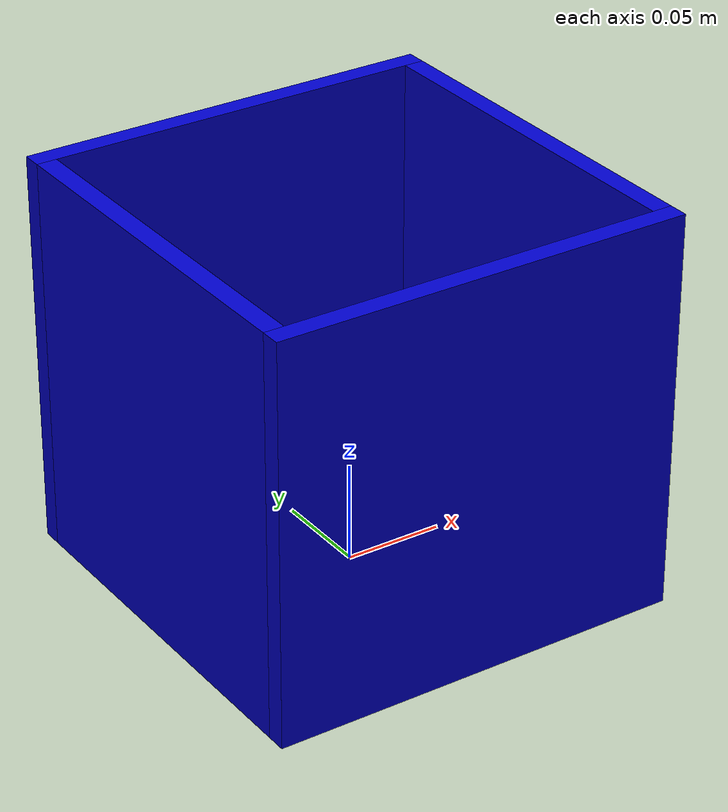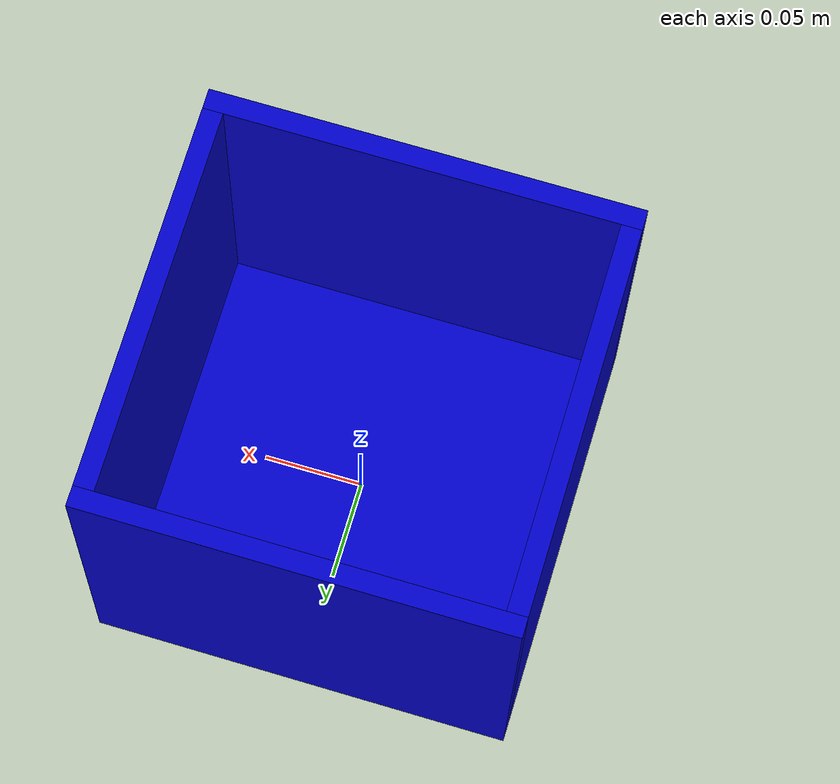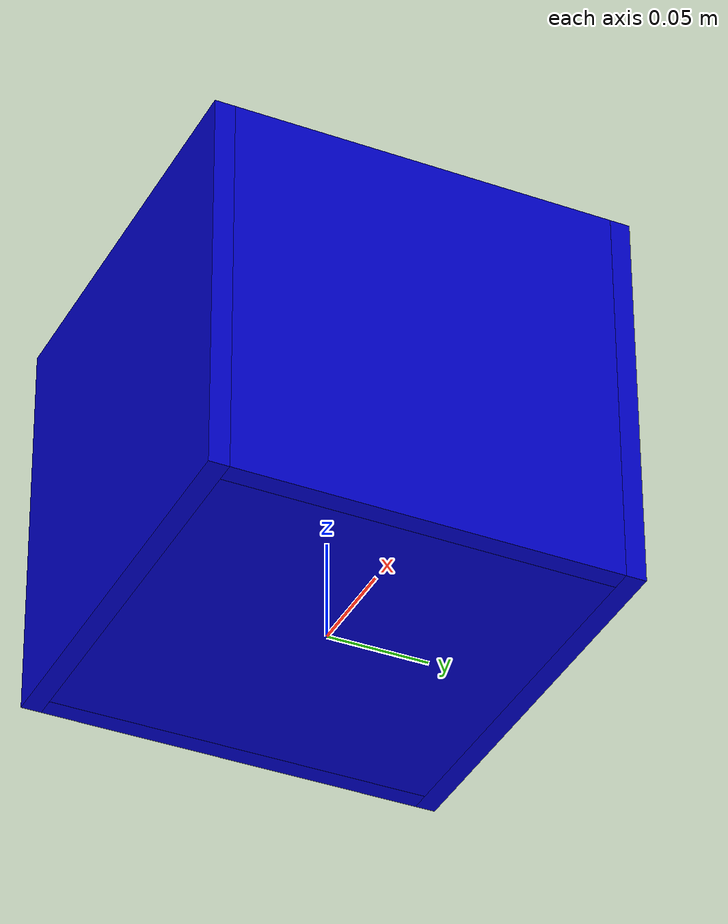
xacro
<?xml version="1.0" encoding="UTF-8"?>
<robot xmlns:xacro="http://ros.org/wiki/xacro" name="box">

  <!-- This creates an open box, i.e. 5-sided box with open side facing up. -->

  <xacro:arg name="create_box" default="true"/>
  <xacro:arg name="x_extent"   default="0.2"/>
  <xacro:arg name="y_extent"   default="0.2"/>
  <xacro:arg name="z_extent"   default="0.2"/>

  <xacro:include filename="$(find ll4ma_robots_description)/urdf/xacro_macros/inertia_tensors.xacro"/>

  <xacro:macro name="wall" params="link_name x_extent y_extent z_extent mass">
    <link name="${link_name}">
      <inertial>
	<origin xyz="0 0 0" rpy="0 0 0"/>
        <mass value="${mass}"/>
	<xacro:cuboid_inertia m="${mass}" x="${x_extent}" y="${y_extent}" z="${z_extent}"/>
      </inertial>
      <visual>
        <origin xyz="0 0 0" rpy="0 0 0"/>
        <geometry>
    	  <box size="${x_extent} ${y_extent} ${z_extent}" />
        </geometry>
        <material name="blue">
	  <color rgba="0 0 0.8 1"/>
	</material>
      </visual>
      <collision>
        <origin xyz="0 0 0" rpy="0 0 0"/>
        <geometry>
	  <box size="${x_extent} ${y_extent} ${z_extent}" />
        </geometry>
      </collision>
    </link>
  </xacro:macro>

  <xacro:macro name="open_box" params="x_extent:=1 y_extent:=1 z_extent:=1">
    <xacro:property name="link_mass" value="1"/>
    <xacro:property name="wall_thickness" value="0.01"/>

    <xacro:wall link_name="box_base" x_extent="${x_extent-wall_thickness}"
		y_extent="${y_extent-wall_thickness}" z_extent="${wall_thickness}"
		mass="${link_mass}"/>

    <xacro:wall link_name="box_left_wall" x_extent="${x_extent+wall_thickness}"
		y_extent="${wall_thickness}" z_extent="${z_extent}" mass="${link_mass}"/>
    <joint name="base_to_left_wall" type="fixed">
      <origin xyz="0 ${-y_extent/2} ${(z_extent-wall_thickness)/2}" rpy="0 0 0"/>
      <parent link="box_base"/>
      <child link="box_left_wall"/>
    </joint>

    <xacro:wall link_name="box_right_wall" x_extent="${x_extent+wall_thickness}"
		y_extent="${wall_thickness}" z_extent="${z_extent}" mass="${link_mass}"/>
    <joint name="base_to_right_wall" type="fixed">
      <origin xyz="0 ${y_extent/2} ${(z_extent-wall_thickness)/2}" rpy="0 0 0"/>
      <parent link="box_base"/>
      <child link="box_right_wall"/>
    </joint>

    <xacro:wall link_name="box_back_wall" x_extent="${wall_thickness}"
		y_extent="${y_extent-wall_thickness}" z_extent="${z_extent}" mass="${link_mass}"/>
    <joint name="base_to_back_wall" type="fixed">
      <origin xyz="${-x_extent/2} 0 ${(z_extent-wall_thickness)/2}" rpy="0 0 0"/>
      <parent link="box_base"/>
      <child link="box_back_wall"/>
    </joint>

    <xacro:wall link_name="box_front_wall" x_extent="${wall_thickness}"
		y_extent="${y_extent-wall_thickness}" z_extent="${z_extent}" mass="${link_mass}"/>
    <joint name="base_to_front_wall" type="fixed">
      <origin xyz="${x_extent/2} 0 ${(z_extent-wall_thickness)/2}" rpy="0 0 0"/>
      <parent link="box_base"/>
      <child link="box_front_wall"/>
    </joint>

  </xacro:macro>

  <xacro:if value="$(arg create_box)">
    <xacro:open_box x_extent="$(arg x_extent)" y_extent="$(arg y_extent)" z_extent="$(arg z_extent)"/>
  </xacro:if>

</robot>

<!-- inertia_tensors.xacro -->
<robot xmlns:xacro="http://www.ros.org/wiki/xacro">

  <!-- x = depth, y = width, z = height -->
  <xacro:macro name="cuboid_inertia" params="m x y z">
    <inertia ixx="${(1.0 / 12.0) * m * (y * y + z * z)}" ixy="0.0" ixz="0.0"
	     iyy="${(1.0 / 12.0) * m * (x * x + z * z)}" iyz="0.0"
	     izz="${(1.0 / 12.0) * m * (x * x + y * y)}"/>
  </xacro:macro>

  <xacro:macro name="ellipsoid_inertia" params="m x y z">
    <inertia ixx="${(1.0 / 5.0) * m * (y * y + z * z)}" ixy="0.0" ixz="0.0"
	     iyy="${(1.0 / 5.0) * m * (x * x + z * z)}" iyz="0.0"
	     izz="${(1.0 / 5.0) * m * (x * x + y * y)}"/>
  </xacro:macro>

  <xacro:macro name="sphere_inertia" params="m r">
    <inertia ixx="${(2.0 / 5.0) * m * (r * r)}" ixy="0.0" ixz="0.0"
	     iyy="${(2.0 / 5.0) * m * (r * r)}" iyz="0.0"
	     izz="${(2.0 / 5.0) * m * (r * r)}"/>
  </xacro:macro>

  <!-- Assuming z-axis goes along height of cylinder -->
  <xacro:macro name="cylinder_inertia" params="m r h">
    <inertia ixx="${(1.0 / 12.0) * m * (3 * r * r + h * h)}" ixy="0.0" ixz="0.0"
	     iyy="${(1.0 / 12.0) * m * (3 * r * r + h * h)}" iyz="0.0"
	     izz="${(1.0 / 2.0) * m * (r * r)}"/>
  </xacro:macro>

</robot>
